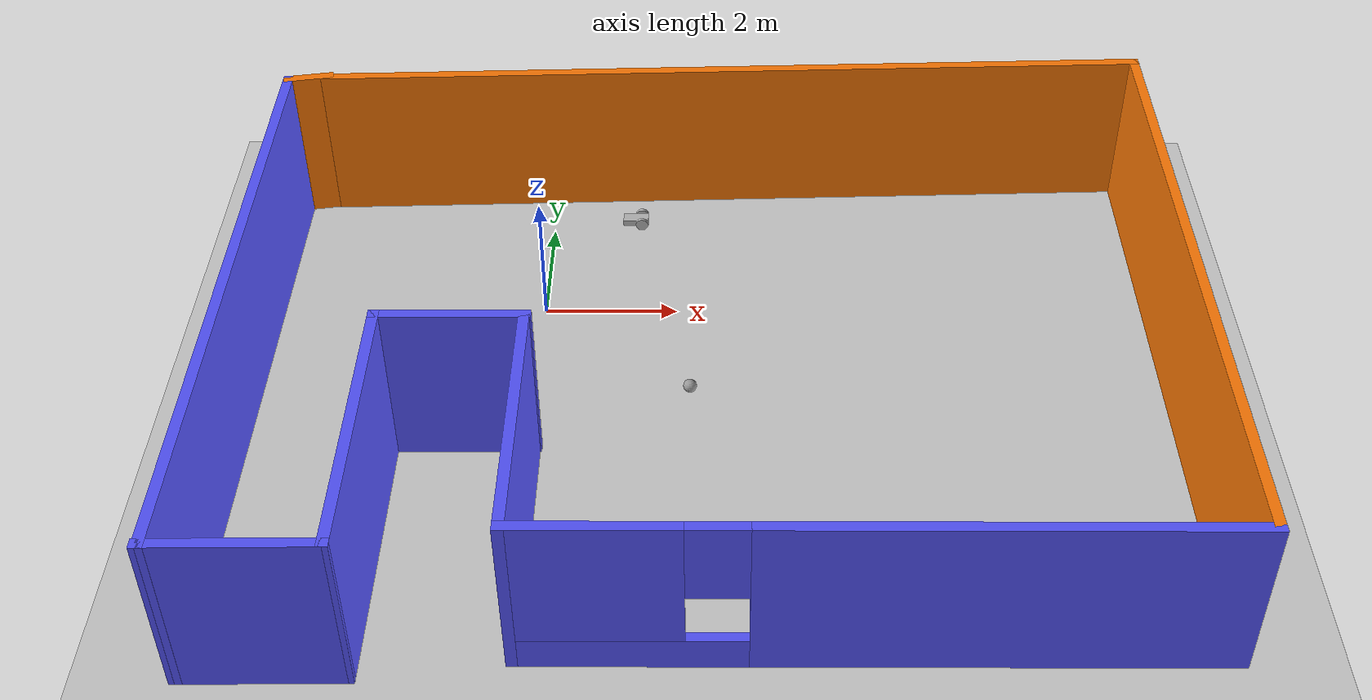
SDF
<sdf version="1.6">
 <world name="default">
  <plugin name="hello" filename="libhello.so"/>
  <light name="sun" type="directional">
   <pose>0 0 10 0 -0 0</pose>
   <diffuse>0.8 0.8 0.8 1</diffuse>
   <specular>0.1 0.1 0.1 1</specular>
   <attenuation>
    <range>1000</range>
    <constant>0.9</constant>
    <linear>0.01</linear>
    <quadratic>0.001</quadratic>
   </attenuation>
   <direction>-0.5 0.5 -1</direction>
  </light>
  <model name="ground_plane">
   <static>1</static>
   <link name="link">
    <collision name="collision">
     <geometry><plane><normal>0 0 1</normal><size>100 100</size></plane></geometry>
     <surface><friction><ode><mu>100</mu><mu2>50</mu2></ode></friction></surface>
    </collision>
    <visual name="visual">
     <cast_shadows>0</cast_shadows>
     <geometry><plane><normal>0 0 1</normal><size>100 100</size></plane></geometry>
     <material>
      <script><uri>file://media/materials/scripts/gazebo.material</uri><name>Gazebo/Grey</name></script>
     </material>
    </visual>
   </link>
  </model>
  <gravity>0 0 -9.8</gravity>
  <magnetic_field>6e-06 2.3e-05 -4.2e-05</magnetic_field>
  <atmosphere type="adiabatic"/>
  <physics name="default_physics" default="0" type="ode">
   <max_step_size>0.001</max_step_size>
   <real_time_factor>1</real_time_factor>
   <real_time_update_rate>1000</real_time_update_rate>
  </physics>
  <scene><ambient>0.4 0.4 0.4 1</ambient><background>0.7 0.7 0.7 1</background><shadows>1</shadows></scene>
  <spherical_coordinates>
   <surface_model>EARTH_WGS84</surface_model>
   <latitude_deg>0</latitude_deg>
   <longitude_deg>0</longitude_deg>
   <elevation>0</elevation>
   <heading_deg>0</heading_deg>
  </spherical_coordinates>
  <model name="my_robot_0">
   <static>0</static>
   <link name="chassis">
    <pose>0 0 0.1 0 -0 0</pose>
    <collision name="collision"><geometry><box><size>0.4 0.2 0.1</size></box></geometry></collision>
    <visual name="visual"><geometry><box><size>0.4 0.2 0.1</size></box></geometry></visual>
    <collision name="caster_collision">
     <pose>-0.15 0 -0.05 0 -0 0</pose>
     <geometry><sphere><radius>0.05</radius></sphere></geometry>
     <surface><friction><ode><mu>0</mu><mu2>0</mu2><slip1>1</slip1><slip2>1</slip2></ode></friction></surface>
    </collision>
    <visual name="caster_visual">
     <pose>-0.15 0 -0.05 0 -0 0</pose>
     <geometry><sphere><radius>0.05</radius></sphere></geometry>
    </visual>
    <inertial>
     <inertia><ixx>1</ixx><ixy>0</ixy><ixz>0</ixz><iyy>1</iyy><iyz>0</iyz><izz>1</izz></inertia>
     <mass>1</mass>
    </inertial>
   </link>
   <link name="left_wheel">
    <pose>0.1 0.13 0.1 -0 1.5707 1.5707</pose>
    <collision name="collision">
     <geometry><cylinder><radius>0.1</radius><length>0.05</length></cylinder></geometry>
    </collision>
    <visual name="visual">
     <geometry><cylinder><radius>0.1</radius><length>0.05</length></cylinder></geometry>
    </visual>
    <inertial>
     <inertia><ixx>1</ixx><ixy>0</ixy><ixz>0</ixz><iyy>1</iyy><iyz>0</iyz><izz>1</izz></inertia>
     <mass>1</mass>
    </inertial>
   </link>
   <link name="right_wheel">
    <pose>0.1 -0.13 0.1 -0 1.5707 1.5707</pose>
    <collision name="collision">
     <geometry><cylinder><radius>0.1</radius><length>0.05</length></cylinder></geometry>
    </collision>
    <visual name="visual">
     <geometry><cylinder><radius>0.1</radius><length>0.05</length></cylinder></geometry>
    </visual>
    <inertial>
     <inertia><ixx>1</ixx><ixy>0</ixy><ixz>0</ixz><iyy>1</iyy><iyz>0</iyz><izz>1</izz></inertia>
     <mass>1</mass>
    </inertial>
   </link>
   <joint name="left_wheel_hinge" type="revolute">
    <pose>0 0 -0.03 0 -0 0</pose>
    <child>left_wheel</child>
    <parent>chassis</parent>
    <axis>
     <xyz>0 1 0</xyz>
     <use_parent_model_frame>0</use_parent_model_frame>
     <limit><lower>-1e+16</lower><upper>1e+16</upper></limit>
     <dynamics><spring_reference>0</spring_reference><spring_stiffness>0</spring_stiffness></dynamics>
    </axis>
   </joint>
   <joint name="right_wheel_hinge" type="revolute">
    <pose>0 0 0.03 0 -0 0</pose>
    <child>right_wheel</child>
    <parent>chassis</parent>
    <axis>
     <xyz>0 1 0</xyz>
     <use_parent_model_frame>0</use_parent_model_frame>
     <limit><lower>-1e+16</lower><upper>1e+16</upper></limit>
     <dynamics><spring_reference>0</spring_reference><spring_stiffness>0</spring_stiffness></dynamics>
    </axis>
   </joint>
   <pose>-1.449 -2.12371 0 2.5e-05 5e-06 0.000816</pose>
  </model>
  <model name="my_robot_1">
   <static>0</static>
   <link name="chassis">
    <pose>0 0 0.1 0 -0 0</pose>
    <collision name="collision"><geometry><box><size>0.4 0.2 0.1</size></box></geometry></collision>
    <visual name="visual"><geometry><box><size>0.4 0.2 0.1</size></box></geometry></visual>
    <collision name="caster_collision">
     <pose>-0.15 0 -0.05 0 -0 0</pose>
     <geometry><sphere><radius>0.05</radius></sphere></geometry>
     <surface><friction><ode><mu>0</mu><mu2>0</mu2><slip1>1</slip1><slip2>1</slip2></ode></friction></surface>
    </collision>
    <visual name="caster_visual">
     <pose>-0.15 0 -0.05 0 -0 0</pose>
     <geometry><sphere><radius>0.05</radius></sphere></geometry>
    </visual>
    <inertial>
     <inertia><ixx>1</ixx><ixy>0</ixy><ixz>0</ixz><iyy>1</iyy><iyz>0</iyz><izz>1</izz></inertia>
     <mass>1</mass>
    </inertial>
   </link>
   <link name="left_wheel">
    <pose>0.1 0.13 0.1 -0 1.5707 1.5707</pose>
    <collision name="collision">
     <geometry><cylinder><radius>0.1</radius><length>0.05</length></cylinder></geometry>
    </collision>
    <visual name="visual">
     <geometry><cylinder><radius>0.1</radius><length>0.05</length></cylinder></geometry>
    </visual>
    <inertial>
     <inertia><ixx>1</ixx><ixy>0</ixy><ixz>0</ixz><iyy>1</iyy><iyz>0</iyz><izz>1</izz></inertia>
     <mass>1</mass>
    </inertial>
   </link>
   <link name="right_wheel">
    <pose>0.1 -0.13 0.1 -0 1.5707 1.5707</pose>
    <collision name="collision">
     <geometry><cylinder><radius>0.1</radius><length>0.05</length></cylinder></geometry>
    </collision>
    <visual name="visual">
     <geometry><cylinder><radius>0.1</radius><length>0.05</length></cylinder></geometry>
    </visual>
    <inertial>
     <inertia><ixx>1</ixx><ixy>0</ixy><ixz>0</ixz><iyy>1</iyy><iyz>0</iyz><izz>1</izz></inertia>
     <mass>1</mass>
    </inertial>
   </link>
   <joint name="left_wheel_hinge" type="revolute">
    <pose>0 0 -0.03 0 -0 0</pose>
    <child>left_wheel</child>
    <parent>chassis</parent>
    <axis>
     <xyz>0 1 0</xyz>
     <use_parent_model_frame>0</use_parent_model_frame>
     <limit><lower>-1e+16</lower><upper>1e+16</upper></limit>
     <dynamics><spring_reference>0</spring_reference><spring_stiffness>0</spring_stiffness></dynamics>
    </axis>
   </joint>
   <joint name="right_wheel_hinge" type="revolute">
    <pose>0 0 0.03 0 -0 0</pose>
    <child>right_wheel</child>
    <parent>chassis</parent>
    <axis>
     <xyz>0 1 0</xyz>
     <use_parent_model_frame>0</use_parent_model_frame>
     <limit><lower>-1e+16</lower><upper>1e+16</upper></limit>
     <dynamics><spring_reference>0</spring_reference><spring_stiffness>0</spring_stiffness></dynamics>
    </axis>
   </joint>
   <pose>1.30308 2.21878 0 2.1e-05 -3e-06 -6.7e-05</pose>
  </model>
  <model name="building">
   <pose>2.55626 -1.97567 0 0 -0 0</pose>
   <link name="Wall_0">
    <collision name="Wall_0_Collision">
     <geometry><box><size>12.9281 0.15 2.5</size></box></geometry>
     <pose>0 0 1.25 0 -0 0</pose>
    </collision>
    <visual name="Wall_0_Visual">
     <pose>0 0 1.25 0 -0 0</pose>
     <geometry><box><size>12.9281 0.15 2.5</size></box></geometry>
     <material>
      <script><uri>file://media/materials/scripts/gazebo.material</uri><name>Gazebo/Grey</name></script>
      <ambient>0.996078 0.47451 0.0196078 1</ambient>
     </material>
    </visual>
    <pose>0.299033 4.96061 0 0 -0 0.0368</pose>
   </link>
   <link name="Wall_1">
    <collision name="Wall_1_Collision">
     <geometry><box><size>10.25 0.15 2.5</size></box></geometry>
     <pose>0 0 1.25 0 -0 0</pose>
    </collision>
    <visual name="Wall_1_Visual">
     <pose>0 0 1.25 0 -0 0</pose>
     <geometry><box><size>10.25 0.15 2.5</size></box></geometry>
     <material>
      <script><uri>file://media/materials/scripts/gazebo.material</uri><name>Gazebo/Grey</name></script>
      <ambient>0.996078 0.47451 0.0196078 1</ambient>
     </material>
    </visual>
    <pose>6.68374 0.145666 0 0 0 -1.5708</pose>
   </link>
   <link name="Wall_2">
    <pose>2.08919 -4.90433 0 0 -0 3.14159</pose>
    <visual name="Wall_2_Visual_0">
     <pose>-1.53028 0 1.25 0 -0 0</pose>
     <geometry><box><size>6.27852 0.15 2.5</size></box></geometry>
     <material>
      <script><uri>file://media/materials/scripts/gazebo.material</uri><name>Gazebo/Grey</name></script>
      <ambient>0.333333 0.333333 1 1</ambient>
     </material>
    </visual>
    <collision name="Wall_2_Collision_0">
     <geometry><box><size>6.27852 0.15 2.5</size></box></geometry>
     <pose>-1.53028 0 1.25 0 -0 0</pose>
    </collision>
    <visual name="Wall_2_Visual_1">
     <pose>3.13926 0 0.25 0 -0 0</pose>
     <geometry><box><size>3.06057 0.15 0.5</size></box></geometry>
     <material>
      <script><uri>file://media/materials/scripts/gazebo.material</uri><name>Gazebo/Grey</name></script>
      <ambient>0.333333 0.333333 1 1</ambient>
     </material>
    </visual>
    <collision name="Wall_2_Collision_1">
     <geometry><box><size>3.06057 0.15 0.5</size></box></geometry>
     <pose>3.13926 0 0.25 0 -0 0</pose>
    </collision>
    <visual name="Wall_2_Visual_2">
     <pose>3.53926 0 1.5 0 -0 0</pose>
     <geometry><box><size>2.26057 0.15 2</size></box></geometry>
     <material>
      <script><uri>file://media/materials/scripts/gazebo.material</uri><name>Gazebo/Grey</name></script>
      <ambient>0.333333 0.333333 1 1</ambient>
     </material>
    </visual>
    <collision name="Wall_2_Collision_2">
     <geometry><box><size>2.26057 0.15 2</size></box></geometry>
     <pose>3.53926 0 1.5 0 -0 0</pose>
    </collision>
    <visual name="Wall_2_Visual_3">
     <pose>2.00898 0 1.9 0 -0 0</pose>
     <geometry><box><size>0.8 0.15 1.2</size></box></geometry>
     <material>
      <script><uri>file://media/materials/scripts/gazebo.material</uri><name>Gazebo/Grey</name></script>
      <ambient>0.333333 0.333333 1 1</ambient>
     </material>
    </visual>
    <collision name="Wall_2_Collision_3">
     <geometry><box><size>0.8 0.15 1.2</size></box></geometry>
     <pose>2.00898 0 1.9 0 -0 0</pose>
    </collision>
   </link>
   <link name="Wall_3">
    <collision name="Wall_3_Collision">
     <geometry><box><size>4 0.15 2.5</size></box></geometry>
     <pose>0 0 1.25 0 -0 0</pose>
    </collision>
    <visual name="Wall_3_Visual">
     <pose>0 0 1.25 0 -0 0</pose>
     <geometry><box><size>4 0.15 2.5</size></box></geometry>
     <material>
      <script><uri>file://media/materials/scripts/gazebo.material</uri><name>Gazebo/Grey</name></script>
      <ambient>0.333333 0.333333 1 1</ambient>
     </material>
    </visual>
    <pose>-2.50535 -2.97933 0 0 -0 1.5708</pose>
   </link>
   <link name="Wall_4">
    <collision name="Wall_4_Collision">
     <geometry><box><size>2.18102 0.15 2.5</size></box></geometry>
     <pose>0 0 1.25 0 -0 0</pose>
    </collision>
    <visual name="Wall_4_Visual">
     <pose>0 0 1.25 0 -0 0</pose>
     <geometry><box><size>2.18102 0.15 2.5</size></box></geometry>
     <material>
      <script><uri>file://media/materials/scripts/gazebo.material</uri><name>Gazebo/Grey</name></script>
      <ambient>0.333333 0.333333 1 1</ambient>
     </material>
    </visual>
    <pose>-3.50075 -1.05433 0 0 -0 3.14159</pose>
   </link>
   <link name="Wall_5">
    <collision name="Wall_5_Collision">
     <geometry><box><size>4.27011 0.15 2.5</size></box></geometry>
     <pose>0 0 1.25 0 -0 0</pose>
    </collision>
    <visual name="Wall_5_Visual">
     <pose>0 0 1.25 0 -0 0</pose>
     <geometry><box><size>4.27011 0.15 2.5</size></box></geometry>
     <material>
      <script><uri>file://media/materials/scripts/gazebo.material</uri><name>Gazebo/Grey</name></script>
      <ambient>0.333333 0.333333 1 1</ambient>
     </material>
    </visual>
    <pose>-4.51626 -3.11439 0 0 0 -1.5708</pose>
   </link>
   <link name="Wall_6">
    <collision name="Wall_6_Collision">
     <geometry><box><size>2.31951 0.15 2.5</size></box></geometry>
     <pose>0 0 1.25 0 -0 0</pose>
    </collision>
    <visual name="Wall_6_Visual">
     <pose>0 0 1.25 0 -0 0</pose>
     <geometry><box><size>2.31951 0.15 2.5</size></box></geometry>
     <material>
      <script><uri>file://media/materials/scripts/gazebo.material</uri><name>Gazebo/Grey</name></script>
      <ambient>0.333333 0.333333 1 1</ambient>
     </material>
    </visual>
    <pose>-5.60096 -5.18601 0 0 0 -3.13093</pose>
   </link>
   <link name="Wall_7">
    <collision name="Wall_7_Collision">
     <geometry><box><size>10 0.15 2.5</size></box></geometry>
     <pose>0 0 1.25 0 -0 0</pose>
    </collision>
    <visual name="Wall_7_Visual">
     <pose>0 0 1.25 0 -0 0</pose>
     <geometry><box><size>10 0.15 2.5</size></box></geometry>
     <material>
      <script><uri>file://media/materials/scripts/gazebo.material</uri><name>Gazebo/Grey</name></script>
      <ambient>0.333333 0.333333 1 1</ambient>
     </material>
    </visual>
    <pose>-6.66252 -0.272579 0 0 -0 1.5708</pose>
   </link>
   <link name="Wall_8">
    <collision name="Wall_8_Collision">
     <geometry><box><size>0.771537 0.15 2.5</size></box></geometry>
     <pose>0 0 1.25 0 -0 0</pose>
    </collision>
    <visual name="Wall_8_Visual">
     <pose>0 0 1.25 0 -0 0</pose>
     <geometry><box><size>0.771537 0.15 2.5</size></box></geometry>
     <material>
      <script><uri>file://media/materials/scripts/gazebo.material</uri><name>Gazebo/Grey</name></script>
      <ambient>0.996078 0.47451 0.0196078 1</ambient>
     </material>
    </visual>
    <pose>-6.35651 4.70657 0 0 -0 0.175141</pose>
   </link>
   <static>1</static>
  </model>
  <model name="my_ball">
   <link name="link_0">
    <inertial>
     <mass>1</mass>
     <inertia><ixx>0.1</ixx><ixy>0</ixy><ixz>0</ixz><iyy>0.1</iyy><iyz>0</iyz><izz>0.1</izz></inertia>
    </inertial>
    <visual name="visual">
     <geometry><sphere><radius>0.1</radius></sphere></geometry>
     <material>
      <lighting>1</lighting>
      <script><uri>file://media/materials/scripts/gazebo.material</uri><name>Gazebo/Grey</name></script>
      <ambient>1 1 1 1</ambient>
      <diffuse>1 1 1 1</diffuse>
      <specular>1 1 1 1</specular>
      <emissive>1 1 1 1</emissive>
      <shader type="vertex"><normal_map>__default__</normal_map></shader>
     </material>
    </visual>
    <collision name="collision">
     <geometry><sphere><radius>0.1</radius></sphere></geometry>
     <surface>
      <friction>
       <ode><mu>1</mu><mu2>1</mu2><fdir1>0 0 0</fdir1><slip1>0</slip1><slip2>0</slip2></ode>
       <torsional>
        <coefficient>1</coefficient>
        <patch_radius>0</patch_radius>
        <surface_radius>0</surface_radius>
        <use_patch_radius>1</use_patch_radius>
        <ode><slip>0</slip></ode>
       </torsional>
      </friction>
      <bounce><restitution_coefficient>0</restitution_coefficient><threshold>1e+06</threshold></bounce>
      <contact>
       <collide_without_contact>0</collide_without_contact>
       <collide_without_contact_bitmask>1</collide_without_contact_bitmask>
       <collide_bitmask>1</collide_bitmask>
       <ode>
        <soft_cfm>0</soft_cfm>
        <soft_erp>0.2</soft_erp>
        <kp>1e+13</kp>
        <kd>1</kd>
        <max_vel>0.01</max_vel>
        <min_depth>0</min_depth>
       </ode>
       <bullet>
        <split_impulse>1</split_impulse>
        <split_impulse_penetration_threshold>-0.01</split_impulse_penetration_threshold>
        <soft_cfm>0</soft_cfm>
        <soft_erp>0.2</soft_erp>
        <kp>1e+13</kp>
        <kd>1</kd>
       </bullet>
      </contact>
     </surface>
    </collision>
   </link>
   <static>0</static>
   <pose>2.23119 -1.81129 0.1 0 -0 0</pose>
  </model>
 </world>
</sdf>
